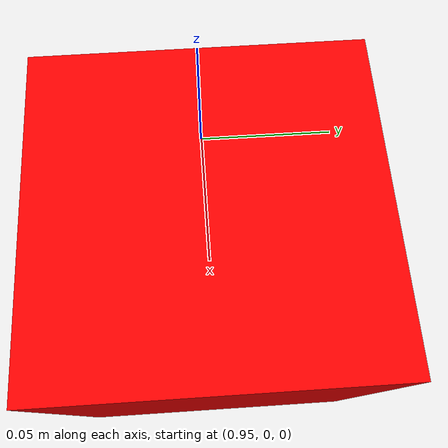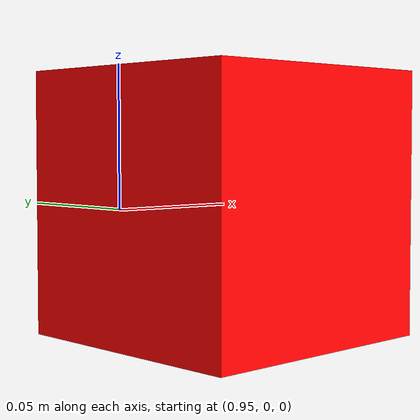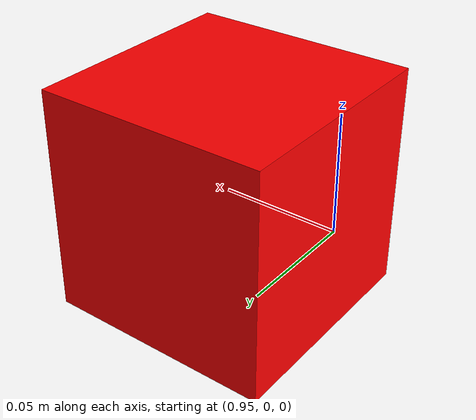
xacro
<robot name="test_robot" xmlns:xacro="http:ros.org/wiki/xacro">
    <xacro:arg name="length" default="1.0"/>

    <material name="red">
        <color rgba="1.0 0.0 0.0 1.0"/>
    </material>

    <link name="base_link"/>

    <joint name="body1_joint" type="fixed">
        <origin rpy="0 0 0" xyz="$(arg length) 0 0"/>
        <parent link="base_link"/>
        <child link="body1_link"/>
    </joint>

    <link name="body1_link">
        <visual>
            <geometry>
                <box size="0.1 0.1 0.1"/>
            </geometry>
            <material name="red"/>
        </visual>
    </link>
</robot>
